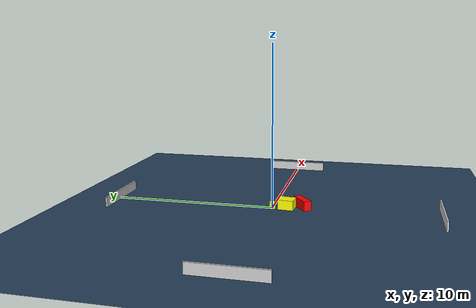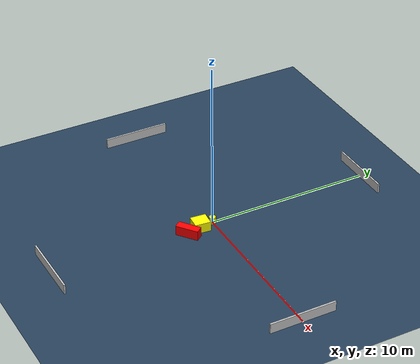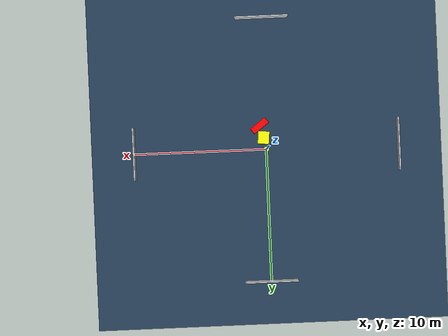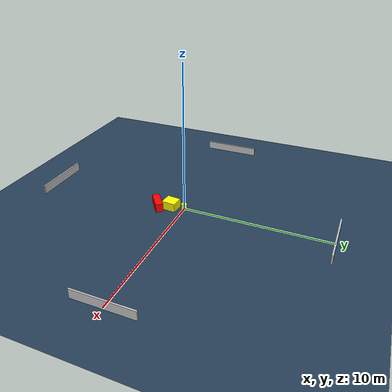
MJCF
<?xml version="1.0" ?>
<mujoco model="generated_environment">
  <option timestep="0.01" integrator="RK4" cone="elliptic"/>
  <default>
    <geom density="1"/>
  </default>
  <asset>
    <texture builtin="gradient" height="3072" name="skybox" rgb1="0.3 0.5 0.7" rgb2="0 0 0" type="skybox" width="512"/>
    <texture builtin="checker" height="300" name="groundplane" rgb1="0.2 0.3 0.4" rgb2="0.1 0.2 0.3" type="2d" width="300"/>
    <material name="groundplane" reflectance="0.2" texrepeat="5 5" texture="groundplane"/>
  </asset>
  <worldbody>
    <light dir="0 0 -1" directional="true" pos="0 0 1.5"/>
    <geom condim="3" friction="0.5 0.005 0.001" material="groundplane" name="floor" pos="0 0 0" size="0 0 0.05" type="plane"/>
    <body name="walls">
      <geom name="wall_1" condim="4" pos="-10.0 0.0 0.3" rgba="0.800000011920929 0.800000011920929 0.800000011920929 1.0" size="0.05 2.0 0.3" type="box"/>
      <geom name="wall_2" condim="4" pos="10.0 0.0 0.3" rgba="0.800000011920929 0.800000011920929 0.800000011920929 1.0" size="0.05 2.0 0.3" type="box"/>
      <geom name="wall_3" condim="4" pos="0.0 -10.0 0.3" rgba="0.800000011920929 0.800000011920929 0.800000011920929 1.0" size="2.0 0.05 0.3" type="box"/>
      <geom name="wall_4" condim="4" pos="0.0 10.0 0.3" rgba="0.800000011920929 0.800000011920929 0.800000011920929 1.0" size="2.0 0.05 0.3" type="box"/>
    </body>
    <body name="robot">
      <joint name="joint_x" type="slide" pos="0 0 0" axis="1 0 0"/>
      <joint name="joint_y" type="slide" pos="0 0 0" axis="0 1 0"/>
      <geom name="robot" type="cylinder" pos="0.0 0.0 0.2" size="0.2 0.2 0.0" mass="5.0" friction="1.0 0.005 0.0001" condim="4" rgba="1.0 1.0 0.0 1.0"/>
    </body>
    <body name="obstacle_1_movable">
      <geom name="obstacle_1_movable" condim="4" pos="0.18393973796616633 -0.8696651082423116 0.3" euler="0 0 354.3869776280533" friction="0.0 0.005 0.001" rgba="1.0 1.0 0.0 1.0" size="0.41905613092344196 0.47207620161228564 0.3" type="box" mass="0.1"/>
      <joint type="free"/>
    </body>
    <body name="obstacle_2_static">
      <geom name="obstacle_2_static" condim="4" pos="0.44889066032258257 -1.7700940957653963 0.3" euler="0 0 217.05522397312023" friction="0.0 0.005 0.001" rgba="1.0 0.0 0.0 1.0" size="0.6883076328347391 0.24392816215921348 0.3" type="box"/>
    </body>
  </worldbody>
  <actuator>
    <motor name="actuator_x" joint="joint_x" gear="1" ctrlrange="-1 1"/>
    <motor name="actuator_y" joint="joint_y" gear="1" ctrlrange="-1 1"/>
  </actuator>
</mujoco>
